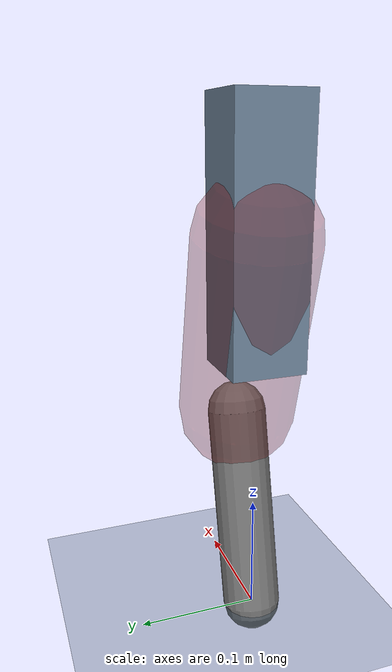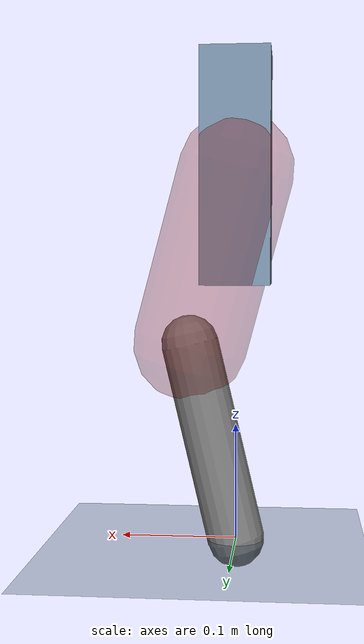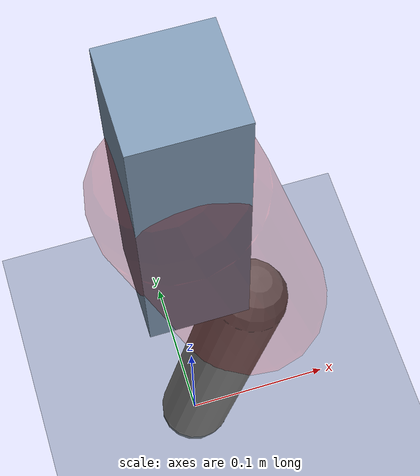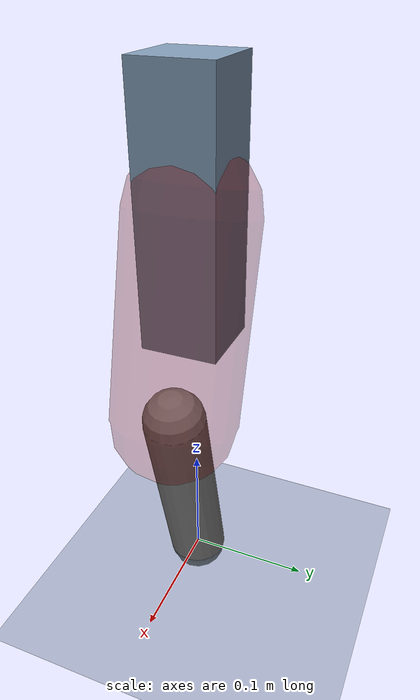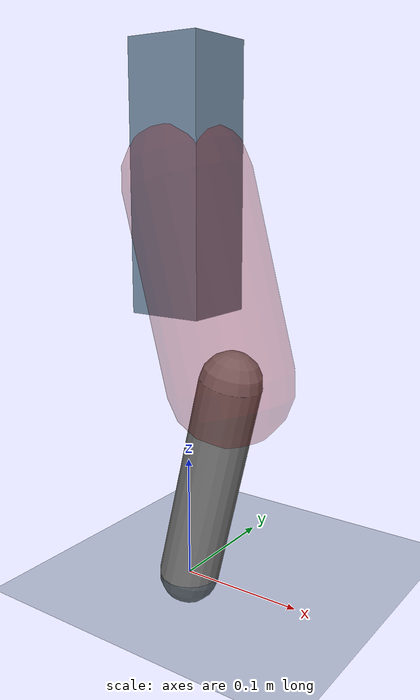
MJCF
<mujoco model="Hopper2D">
	<compiler inertiafromgeom="true" angle="radian" />
	<option timestep="0.001" integrator="implicit" cone="elliptic" solver="Newton" tolerance="1e-10" />

	<default>
		<geom contype="1" conaffinity="1" condim="3" friction="2 0.005 0.0001" solref="0.005 1" />
		<joint limited="true" damping="0.1" />
	</default>

	<asset>
		<texture name="skybox" type="skybox" builtin="gradient" rgb1=".4 .6 .8" rgb2="0 0 0" width="800" height="800" />
		<texture name="grid" type="2d" builtin="checker" rgb1=".1 .2 .3" rgb2=".2 .3 .4" width="300" height="300" mark="edge" markrgb=".2 .3 .4" />
		<material name="ground" texture="grid" texrepeat="1 1" texuniform="true" reflectance="0.1" />
		<material name="leg" rgba="0.5 0.6 0.7 1" />
	</asset>

	<worldbody>

		<geom name="floor" type="plane" size="5 5 0.25" material="ground" />

		<light directional="false" diffuse="0.8 0.8 0.8" specular="0.3 0.3 0.3" pos="0 0 2" dir="0 0 -1" />
		<light mode="targetbodycom" target="base" directional="false" diffuse="0.8 0.8 0.8" specular="0.3 0.3 0.3" pos="0 0 2" dir="0 0 -1" />

		<camera name="fixed" pos="0 -2 1" xyaxes="1 0 0 0 0 1" />
		<camera name="tracking" mode="trackcom" pos="0 -3 1" />

		<body name="root" pos="0 0 0.3224049315052889">
			<joint name="slide_x" type="slide" axis="1 0 0" range="-100 100" />
			<joint name="slide_z" type="slide" axis="0 0 1" range="0 10" />

			<body name="base" pos="0 0 0">
				<geom name="torso" type="box" size="0.03 0.03 0.1" mass="3.6950000000000003" material="leg" />

				<body name="link1" pos="0 0 0" euler="0 1.3103198219637402 0">
					<joint type="hinge" axis="0 -1 0" pos="0 0 0" name="hinge1" limited="true" range="-3.14 3.14" stiffness="0" damping="0.1" />
					<geom name="thigh" type="capsule" fromto="0 0 0 0.15683642722118196 0 0" size="0.05" rgba="0.5 0 0 0.3" mass="0.6247074253308367" />

					<body name="link2" pos="0.15683642722118196 0 0" euler="0 0.49261889685781274 0">
						<joint type="hinge" axis="0 -1 0" pos="0 0 0" name="hinge2" limited="true" range="-3.14 3.14" stiffness="0" damping="0.1" />
						<geom name="shank" type="capsule" fromto="0 0 0 0.17556850428410697 0 0" size="0.025" mass="0.3801116538556963" />

					</body>
				</body>
			</body>
		</body>
	</worldbody>

	<actuator>
		<motor name="torque1" joint="hinge1" ctrlrange="-125.49306411328743 125.49306411328743" ctrllimited="true" gear="1" />
		<motor name="torque2" joint="hinge2" ctrlrange="-119.72255352097766 119.72255352097766" ctrllimited="true" gear="1" />
	</actuator>
</mujoco>
